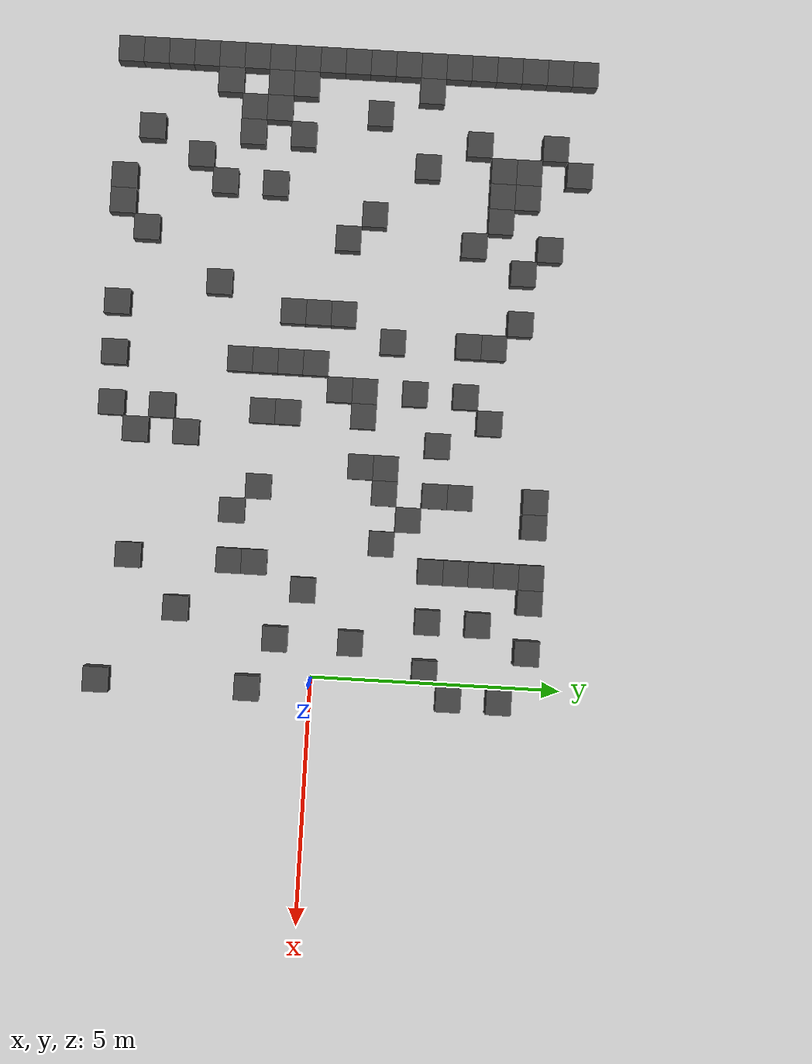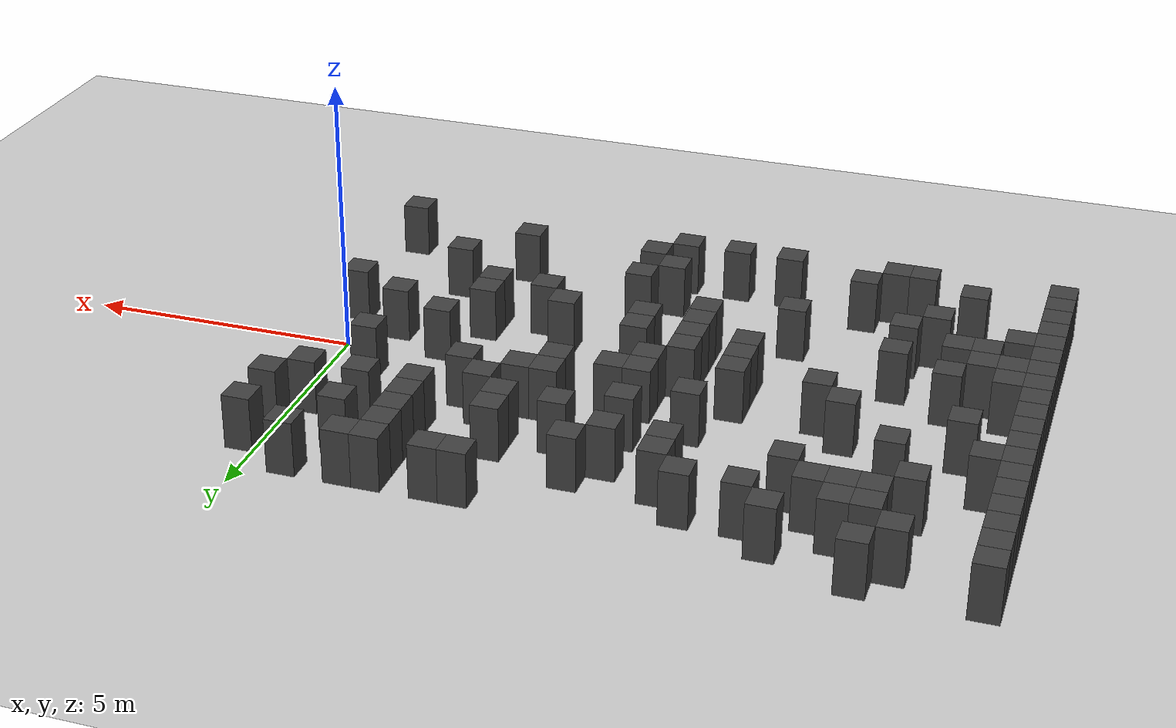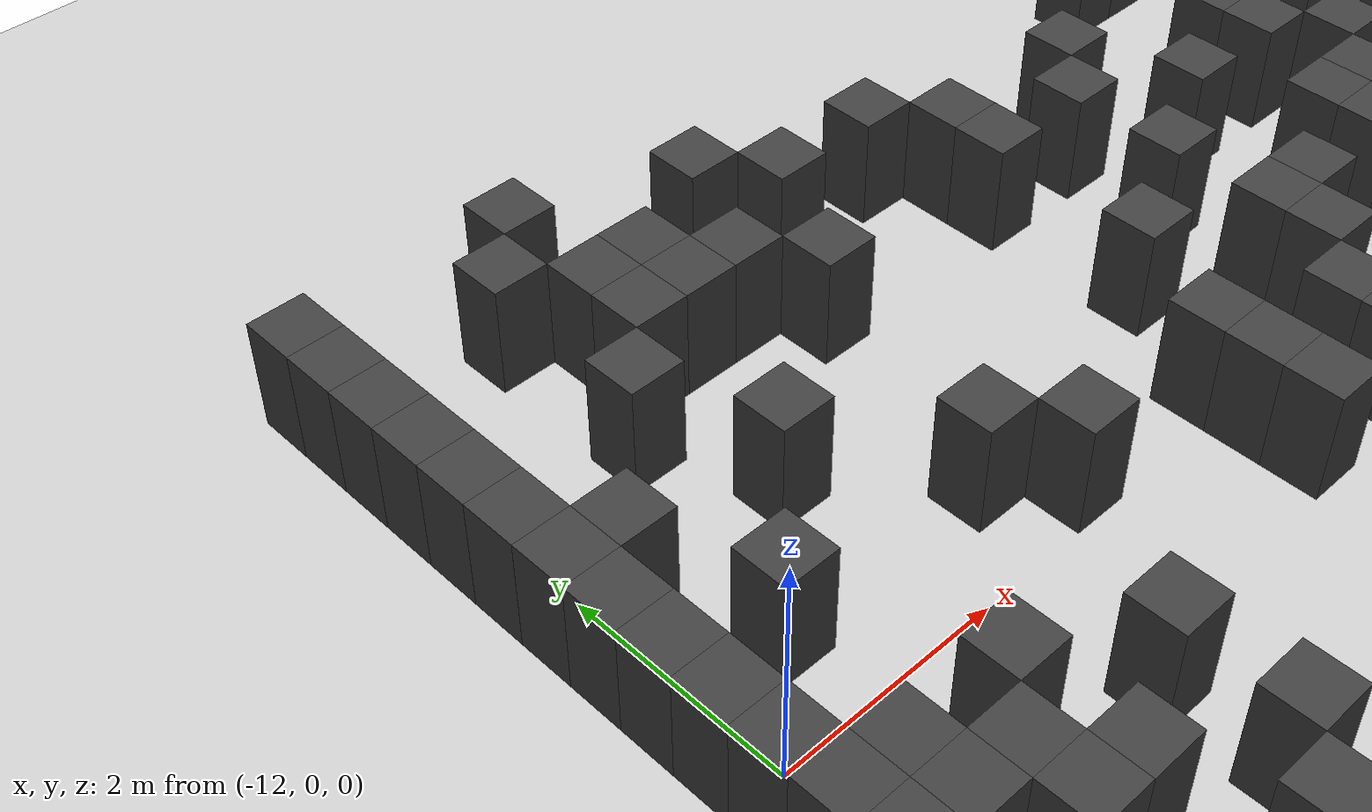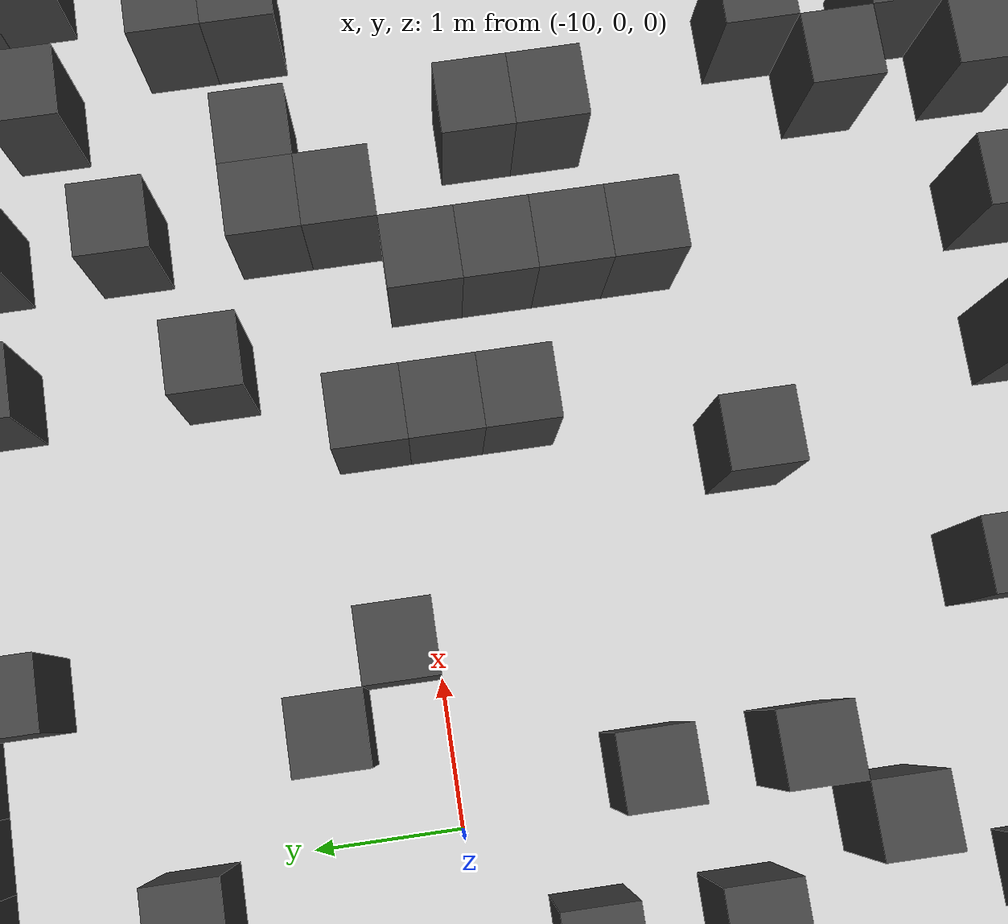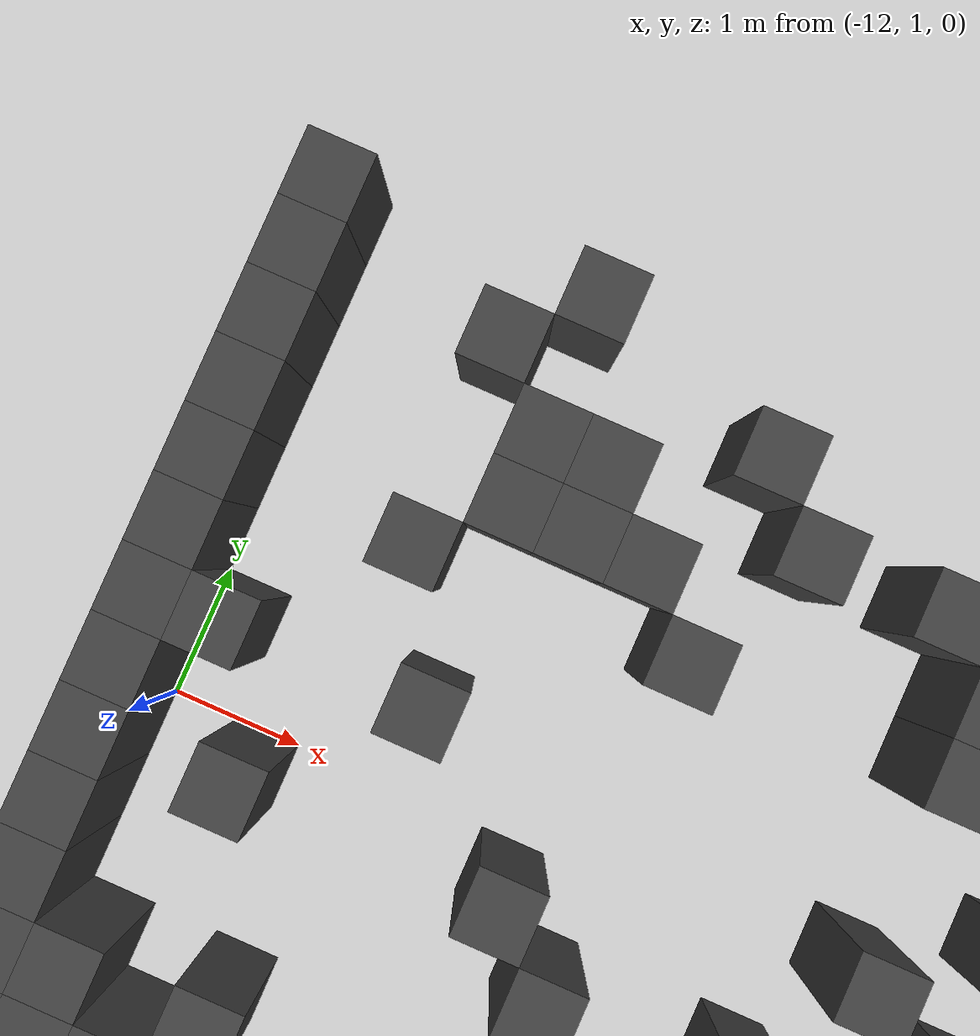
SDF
<sdf version="1.7">
 <world name="map_4009">
  <model name="ground_plane">
   <static>true</static>
   <link name="link">
    <collision name="collision">
     <geometry><plane><normal>0 0 1</normal><size>200 200</size></plane></geometry>
    </collision>
    <visual name="visual">
     <geometry><plane><normal>0 0 1</normal><size>200 200</size></plane></geometry>
     <material><ambient>0.8 0.8 0.8 1</ambient><diffuse>0.8 0.8 0.8 1</diffuse></material>
    </visual>
   </link>
  </model>
  <model name="maze_environment">
   <static>true</static>
   <link name="wall_210">
    <pose>-12.250 4.750 0.500 0 0 0</pose>
    <collision name="col"><geometry><box><size>0.5 0.5 1.0</size></box></geometry></collision>
    <visual name="vis">
     <geometry><box><size>0.5 0.5 1.0</size></box></geometry>
     <material><ambient>0.15 0.15 0.15 1</ambient><diffuse>0.25 0.25 0.25 1</diffuse></material>
    </visual>
   </link>
   <link name="wall_211">
    <pose>-10.250 4.750 0.500 0 0 0</pose>
    <collision name="col"><geometry><box><size>0.5 0.5 1.0</size></box></geometry></collision>
    <visual name="vis">
     <geometry><box><size>0.5 0.5 1.0</size></box></geometry>
     <material><ambient>0.15 0.15 0.15 1</ambient><diffuse>0.25 0.25 0.25 1</diffuse></material>
    </visual>
   </link>
   <link name="wall_222">
    <pose>-12.250 4.250 0.500 0 0 0</pose>
    <collision name="col"><geometry><box><size>0.5 0.5 1.0</size></box></geometry></collision>
    <visual name="vis">
     <geometry><box><size>0.5 0.5 1.0</size></box></geometry>
     <material><ambient>0.15 0.15 0.15 1</ambient><diffuse>0.25 0.25 0.25 1</diffuse></material>
    </visual>
   </link>
   <link name="wall_223">
    <pose>-10.750 4.250 0.500 0 0 0</pose>
    <collision name="col"><geometry><box><size>0.5 0.5 1.0</size></box></geometry></collision>
    <visual name="vis">
     <geometry><box><size>0.5 0.5 1.0</size></box></geometry>
     <material><ambient>0.15 0.15 0.15 1</ambient><diffuse>0.25 0.25 0.25 1</diffuse></material>
    </visual>
   </link>
   <link name="wall_224">
    <pose>-8.750 4.250 0.500 0 0 0</pose>
    <collision name="col"><geometry><box><size>0.5 0.5 1.0</size></box></geometry></collision>
    <visual name="vis">
     <geometry><box><size>0.5 0.5 1.0</size></box></geometry>
     <material><ambient>0.15 0.15 0.15 1</ambient><diffuse>0.25 0.25 0.25 1</diffuse></material>
    </visual>
   </link>
   <link name="wall_225">
    <pose>-3.750 4.250 0.500 0 0 0</pose>
    <collision name="col"><geometry><box><size>0.5 0.5 1.0</size></box></geometry></collision>
    <visual name="vis">
     <geometry><box><size>0.5 0.5 1.0</size></box></geometry>
     <material><ambient>0.15 0.15 0.15 1</ambient><diffuse>0.25 0.25 0.25 1</diffuse></material>
    </visual>
   </link>
   <link name="wall_226">
    <pose>-3.250 4.250 0.500 0 0 0</pose>
    <collision name="col"><geometry><box><size>0.5 0.5 1.0</size></box></geometry></collision>
    <visual name="vis">
     <geometry><box><size>0.5 0.5 1.0</size></box></geometry>
     <material><ambient>0.15 0.15 0.15 1</ambient><diffuse>0.25 0.25 0.25 1</diffuse></material>
    </visual>
   </link>
   <link name="wall_227">
    <pose>-2.250 4.250 0.500 0 0 0</pose>
    <collision name="col"><geometry><box><size>0.5 0.5 1.0</size></box></geometry></collision>
    <visual name="vis">
     <geometry><box><size>0.5 0.5 1.0</size></box></geometry>
     <material><ambient>0.15 0.15 0.15 1</ambient><diffuse>0.25 0.25 0.25 1</diffuse></material>
    </visual>
   </link>
   <link name="wall_228">
    <pose>-1.750 4.250 0.500 0 0 0</pose>
    <collision name="col"><geometry><box><size>0.5 0.5 1.0</size></box></geometry></collision>
    <visual name="vis">
     <geometry><box><size>0.5 0.5 1.0</size></box></geometry>
     <material><ambient>0.15 0.15 0.15 1</ambient><diffuse>0.25 0.25 0.25 1</diffuse></material>
    </visual>
   </link>
   <link name="wall_229">
    <pose>-0.750 4.250 0.500 0 0 0</pose>
    <collision name="col"><geometry><box><size>0.5 0.5 1.0</size></box></geometry></collision>
    <visual name="vis">
     <geometry><box><size>0.5 0.5 1.0</size></box></geometry>
     <material><ambient>0.15 0.15 0.15 1</ambient><diffuse>0.25 0.25 0.25 1</diffuse></material>
    </visual>
   </link>
   <link name="wall_236">
    <pose>-12.250 3.750 0.500 0 0 0</pose>
    <collision name="col"><geometry><box><size>0.5 0.5 1.0</size></box></geometry></collision>
    <visual name="vis">
     <geometry><box><size>0.5 0.5 1.0</size></box></geometry>
     <material><ambient>0.15 0.15 0.15 1</ambient><diffuse>0.25 0.25 0.25 1</diffuse></material>
    </visual>
   </link>
   <link name="wall_237">
    <pose>-10.250 3.750 0.500 0 0 0</pose>
    <collision name="col"><geometry><box><size>0.5 0.5 1.0</size></box></geometry></collision>
    <visual name="vis">
     <geometry><box><size>0.5 0.5 1.0</size></box></geometry>
     <material><ambient>0.15 0.15 0.15 1</ambient><diffuse>0.25 0.25 0.25 1</diffuse></material>
    </visual>
   </link>
   <link name="wall_238">
    <pose>-9.750 3.750 0.500 0 0 0</pose>
    <collision name="col"><geometry><box><size>0.5 0.5 1.0</size></box></geometry></collision>
    <visual name="vis">
     <geometry><box><size>0.5 0.5 1.0</size></box></geometry>
     <material><ambient>0.15 0.15 0.15 1</ambient><diffuse>0.25 0.25 0.25 1</diffuse></material>
    </visual>
   </link>
   <link name="wall_239">
    <pose>-8.250 3.750 0.500 0 0 0</pose>
    <collision name="col"><geometry><box><size>0.5 0.5 1.0</size></box></geometry></collision>
    <visual name="vis">
     <geometry><box><size>0.5 0.5 1.0</size></box></geometry>
     <material><ambient>0.15 0.15 0.15 1</ambient><diffuse>0.25 0.25 0.25 1</diffuse></material>
    </visual>
   </link>
   <link name="wall_240">
    <pose>-7.250 3.750 0.500 0 0 0</pose>
    <collision name="col"><geometry><box><size>0.5 0.5 1.0</size></box></geometry></collision>
    <visual name="vis">
     <geometry><box><size>0.5 0.5 1.0</size></box></geometry>
     <material><ambient>0.15 0.15 0.15 1</ambient><diffuse>0.25 0.25 0.25 1</diffuse></material>
    </visual>
   </link>
   <link name="wall_241">
    <pose>-2.250 3.750 0.500 0 0 0</pose>
    <collision name="col"><geometry><box><size>0.5 0.5 1.0</size></box></geometry></collision>
    <visual name="vis">
     <geometry><box><size>0.5 0.5 1.0</size></box></geometry>
     <material><ambient>0.15 0.15 0.15 1</ambient><diffuse>0.25 0.25 0.25 1</diffuse></material>
    </visual>
   </link>
   <link name="wall_242">
    <pose>0.250 3.750 0.500 0 0 0</pose>
    <collision name="col"><geometry><box><size>0.5 0.5 1.0</size></box></geometry></collision>
    <visual name="vis">
     <geometry><box><size>0.5 0.5 1.0</size></box></geometry>
     <material><ambient>0.15 0.15 0.15 1</ambient><diffuse>0.25 0.25 0.25 1</diffuse></material>
    </visual>
   </link>
   <link name="wall_245">
    <pose>-12.250 3.250 0.500 0 0 0</pose>
    <collision name="col"><geometry><box><size>0.5 0.5 1.0</size></box></geometry></collision>
    <visual name="vis">
     <geometry><box><size>0.5 0.5 1.0</size></box></geometry>
     <material><ambient>0.15 0.15 0.15 1</ambient><diffuse>0.25 0.25 0.25 1</diffuse></material>
    </visual>
   </link>
   <link name="wall_246">
    <pose>-10.250 3.250 0.500 0 0 0</pose>
    <collision name="col"><geometry><box><size>0.5 0.5 1.0</size></box></geometry></collision>
    <visual name="vis">
     <geometry><box><size>0.5 0.5 1.0</size></box></geometry>
     <material><ambient>0.15 0.15 0.15 1</ambient><diffuse>0.25 0.25 0.25 1</diffuse></material>
    </visual>
   </link>
   <link name="wall_247">
    <pose>-9.750 3.250 0.500 0 0 0</pose>
    <collision name="col"><geometry><box><size>0.5 0.5 1.0</size></box></geometry></collision>
    <visual name="vis">
     <geometry><box><size>0.5 0.5 1.0</size></box></geometry>
     <material><ambient>0.15 0.15 0.15 1</ambient><diffuse>0.25 0.25 0.25 1</diffuse></material>
    </visual>
   </link>
   <link name="wall_248">
    <pose>-9.250 3.250 0.500 0 0 0</pose>
    <collision name="col"><geometry><box><size>0.5 0.5 1.0</size></box></geometry></collision>
    <visual name="vis">
     <geometry><box><size>0.5 0.5 1.0</size></box></geometry>
     <material><ambient>0.15 0.15 0.15 1</ambient><diffuse>0.25 0.25 0.25 1</diffuse></material>
    </visual>
   </link>
   <link name="wall_249">
    <pose>-6.750 3.250 0.500 0 0 0</pose>
    <collision name="col"><geometry><box><size>0.5 0.5 1.0</size></box></geometry></collision>
    <visual name="vis">
     <geometry><box><size>0.5 0.5 1.0</size></box></geometry>
     <material><ambient>0.15 0.15 0.15 1</ambient><diffuse>0.25 0.25 0.25 1</diffuse></material>
    </visual>
   </link>
   <link name="wall_250">
    <pose>-5.250 3.250 0.500 0 0 0</pose>
    <collision name="col"><geometry><box><size>0.5 0.5 1.0</size></box></geometry></collision>
    <visual name="vis">
     <geometry><box><size>0.5 0.5 1.0</size></box></geometry>
     <material><ambient>0.15 0.15 0.15 1</ambient><diffuse>0.25 0.25 0.25 1</diffuse></material>
    </visual>
   </link>
   <link name="wall_251">
    <pose>-2.250 3.250 0.500 0 0 0</pose>
    <collision name="col"><geometry><box><size>0.5 0.5 1.0</size></box></geometry></collision>
    <visual name="vis">
     <geometry><box><size>0.5 0.5 1.0</size></box></geometry>
     <material><ambient>0.15 0.15 0.15 1</ambient><diffuse>0.25 0.25 0.25 1</diffuse></material>
    </visual>
   </link>
   <link name="wall_252">
    <pose>-1.250 3.250 0.500 0 0 0</pose>
    <collision name="col"><geometry><box><size>0.5 0.5 1.0</size></box></geometry></collision>
    <visual name="vis">
     <geometry><box><size>0.5 0.5 1.0</size></box></geometry>
     <material><ambient>0.15 0.15 0.15 1</ambient><diffuse>0.25 0.25 0.25 1</diffuse></material>
    </visual>
   </link>
   <link name="wall_258">
    <pose>-12.250 2.750 0.500 0 0 0</pose>
    <collision name="col"><geometry><box><size>0.5 0.5 1.0</size></box></geometry></collision>
    <visual name="vis">
     <geometry><box><size>0.5 0.5 1.0</size></box></geometry>
     <material><ambient>0.15 0.15 0.15 1</ambient><diffuse>0.25 0.25 0.25 1</diffuse></material>
    </visual>
   </link>
   <link name="wall_259">
    <pose>-10.750 2.750 0.500 0 0 0</pose>
    <collision name="col"><geometry><box><size>0.5 0.5 1.0</size></box></geometry></collision>
    <visual name="vis">
     <geometry><box><size>0.5 0.5 1.0</size></box></geometry>
     <material><ambient>0.15 0.15 0.15 1</ambient><diffuse>0.25 0.25 0.25 1</diffuse></material>
    </visual>
   </link>
   <link name="wall_260">
    <pose>-8.750 2.750 0.500 0 0 0</pose>
    <collision name="col"><geometry><box><size>0.5 0.5 1.0</size></box></geometry></collision>
    <visual name="vis">
     <geometry><box><size>0.5 0.5 1.0</size></box></geometry>
     <material><ambient>0.15 0.15 0.15 1</ambient><diffuse>0.25 0.25 0.25 1</diffuse></material>
    </visual>
   </link>
   <link name="wall_261">
    <pose>-6.750 2.750 0.500 0 0 0</pose>
    <collision name="col"><geometry><box><size>0.5 0.5 1.0</size></box></geometry></collision>
    <visual name="vis">
     <geometry><box><size>0.5 0.5 1.0</size></box></geometry>
     <material><ambient>0.15 0.15 0.15 1</ambient><diffuse>0.25 0.25 0.25 1</diffuse></material>
    </visual>
   </link>
   <link name="wall_262">
    <pose>-5.750 2.750 0.500 0 0 0</pose>
    <collision name="col"><geometry><box><size>0.5 0.5 1.0</size></box></geometry></collision>
    <visual name="vis">
     <geometry><box><size>0.5 0.5 1.0</size></box></geometry>
     <material><ambient>0.15 0.15 0.15 1</ambient><diffuse>0.25 0.25 0.25 1</diffuse></material>
    </visual>
   </link>
   <link name="wall_263">
    <pose>-3.750 2.750 0.500 0 0 0</pose>
    <collision name="col"><geometry><box><size>0.5 0.5 1.0</size></box></geometry></collision>
    <visual name="vis">
     <geometry><box><size>0.5 0.5 1.0</size></box></geometry>
     <material><ambient>0.15 0.15 0.15 1</ambient><diffuse>0.25 0.25 0.25 1</diffuse></material>
    </visual>
   </link>
   <link name="wall_264">
    <pose>-2.250 2.750 0.500 0 0 0</pose>
    <collision name="col"><geometry><box><size>0.5 0.5 1.0</size></box></geometry></collision>
    <visual name="vis">
     <geometry><box><size>0.5 0.5 1.0</size></box></geometry>
     <material><ambient>0.15 0.15 0.15 1</ambient><diffuse>0.25 0.25 0.25 1</diffuse></material>
    </visual>
   </link>
   <link name="wall_265">
    <pose>0.250 2.750 0.500 0 0 0</pose>
    <collision name="col"><geometry><box><size>0.5 0.5 1.0</size></box></geometry></collision>
    <visual name="vis">
     <geometry><box><size>0.5 0.5 1.0</size></box></geometry>
     <material><ambient>0.15 0.15 0.15 1</ambient><diffuse>0.25 0.25 0.25 1</diffuse></material>
    </visual>
   </link>
   <link name="wall_271">
    <pose>-12.250 2.250 0.500 0 0 0</pose>
    <collision name="col"><geometry><box><size>0.5 0.5 1.0</size></box></geometry></collision>
    <visual name="vis">
     <geometry><box><size>0.5 0.5 1.0</size></box></geometry>
     <material><ambient>0.15 0.15 0.15 1</ambient><diffuse>0.25 0.25 0.25 1</diffuse></material>
    </visual>
   </link>
   <link name="wall_272">
    <pose>-4.750 2.250 0.500 0 0 0</pose>
    <collision name="col"><geometry><box><size>0.5 0.5 1.0</size></box></geometry></collision>
    <visual name="vis">
     <geometry><box><size>0.5 0.5 1.0</size></box></geometry>
     <material><ambient>0.15 0.15 0.15 1</ambient><diffuse>0.25 0.25 0.25 1</diffuse></material>
    </visual>
   </link>
   <link name="wall_273">
    <pose>-3.750 2.250 0.500 0 0 0</pose>
    <collision name="col"><geometry><box><size>0.5 0.5 1.0</size></box></geometry></collision>
    <visual name="vis">
     <geometry><box><size>0.5 0.5 1.0</size></box></geometry>
     <material><ambient>0.15 0.15 0.15 1</ambient><diffuse>0.25 0.25 0.25 1</diffuse></material>
    </visual>
   </link>
   <link name="wall_274">
    <pose>-2.250 2.250 0.500 0 0 0</pose>
    <collision name="col"><geometry><box><size>0.5 0.5 1.0</size></box></geometry></collision>
    <visual name="vis">
     <geometry><box><size>0.5 0.5 1.0</size></box></geometry>
     <material><ambient>0.15 0.15 0.15 1</ambient><diffuse>0.25 0.25 0.25 1</diffuse></material>
    </visual>
   </link>
   <link name="wall_275">
    <pose>-1.250 2.250 0.500 0 0 0</pose>
    <collision name="col"><geometry><box><size>0.5 0.5 1.0</size></box></geometry></collision>
    <visual name="vis">
     <geometry><box><size>0.5 0.5 1.0</size></box></geometry>
     <material><ambient>0.15 0.15 0.15 1</ambient><diffuse>0.25 0.25 0.25 1</diffuse></material>
    </visual>
   </link>
   <link name="wall_276">
    <pose>-0.250 2.250 0.500 0 0 0</pose>
    <collision name="col"><geometry><box><size>0.5 0.5 1.0</size></box></geometry></collision>
    <visual name="vis">
     <geometry><box><size>0.5 0.5 1.0</size></box></geometry>
     <material><ambient>0.15 0.15 0.15 1</ambient><diffuse>0.25 0.25 0.25 1</diffuse></material>
    </visual>
   </link>
   <link name="wall_281">
    <pose>-12.250 1.750 0.500 0 0 0</pose>
    <collision name="col"><geometry><box><size>0.5 0.5 1.0</size></box></geometry></collision>
    <visual name="vis">
     <geometry><box><size>0.5 0.5 1.0</size></box></geometry>
     <material><ambient>0.15 0.15 0.15 1</ambient><diffuse>0.25 0.25 0.25 1</diffuse></material>
    </visual>
   </link>
   <link name="wall_282">
    <pose>-11.750 1.750 0.500 0 0 0</pose>
    <collision name="col"><geometry><box><size>0.5 0.5 1.0</size></box></geometry></collision>
    <visual name="vis">
     <geometry><box><size>0.5 0.5 1.0</size></box></geometry>
     <material><ambient>0.15 0.15 0.15 1</ambient><diffuse>0.25 0.25 0.25 1</diffuse></material>
    </visual>
   </link>
   <link name="wall_283">
    <pose>-10.250 1.750 0.500 0 0 0</pose>
    <collision name="col"><geometry><box><size>0.5 0.5 1.0</size></box></geometry></collision>
    <visual name="vis">
     <geometry><box><size>0.5 0.5 1.0</size></box></geometry>
     <material><ambient>0.15 0.15 0.15 1</ambient><diffuse>0.25 0.25 0.25 1</diffuse></material>
    </visual>
   </link>
   <link name="wall_284">
    <pose>-5.750 1.750 0.500 0 0 0</pose>
    <collision name="col"><geometry><box><size>0.5 0.5 1.0</size></box></geometry></collision>
    <visual name="vis">
     <geometry><box><size>0.5 0.5 1.0</size></box></geometry>
     <material><ambient>0.15 0.15 0.15 1</ambient><diffuse>0.25 0.25 0.25 1</diffuse></material>
    </visual>
   </link>
   <link name="wall_285">
    <pose>-3.250 1.750 0.500 0 0 0</pose>
    <collision name="col"><geometry><box><size>0.5 0.5 1.0</size></box></geometry></collision>
    <visual name="vis">
     <geometry><box><size>0.5 0.5 1.0</size></box></geometry>
     <material><ambient>0.15 0.15 0.15 1</ambient><diffuse>0.25 0.25 0.25 1</diffuse></material>
    </visual>
   </link>
   <link name="wall_290">
    <pose>-12.250 1.250 0.500 0 0 0</pose>
    <collision name="col"><geometry><box><size>0.5 0.5 1.0</size></box></geometry></collision>
    <visual name="vis">
     <geometry><box><size>0.5 0.5 1.0</size></box></geometry>
     <material><ambient>0.15 0.15 0.15 1</ambient><diffuse>0.25 0.25 0.25 1</diffuse></material>
    </visual>
   </link>
   <link name="wall_291">
    <pose>-6.750 1.250 0.500 0 0 0</pose>
    <collision name="col"><geometry><box><size>0.5 0.5 1.0</size></box></geometry></collision>
    <visual name="vis">
     <geometry><box><size>0.5 0.5 1.0</size></box></geometry>
     <material><ambient>0.15 0.15 0.15 1</ambient><diffuse>0.25 0.25 0.25 1</diffuse></material>
    </visual>
   </link>
   <link name="wall_292">
    <pose>-4.250 1.250 0.500 0 0 0</pose>
    <collision name="col"><geometry><box><size>0.5 0.5 1.0</size></box></geometry></collision>
    <visual name="vis">
     <geometry><box><size>0.5 0.5 1.0</size></box></geometry>
     <material><ambient>0.15 0.15 0.15 1</ambient><diffuse>0.25 0.25 0.25 1</diffuse></material>
    </visual>
   </link>
   <link name="wall_293">
    <pose>-3.750 1.250 0.500 0 0 0</pose>
    <collision name="col"><geometry><box><size>0.5 0.5 1.0</size></box></geometry></collision>
    <visual name="vis">
     <geometry><box><size>0.5 0.5 1.0</size></box></geometry>
     <material><ambient>0.15 0.15 0.15 1</ambient><diffuse>0.25 0.25 0.25 1</diffuse></material>
    </visual>
   </link>
   <link name="wall_294">
    <pose>-2.750 1.250 0.500 0 0 0</pose>
    <collision name="col"><geometry><box><size>0.5 0.5 1.0</size></box></geometry></collision>
    <visual name="vis">
     <geometry><box><size>0.5 0.5 1.0</size></box></geometry>
     <material><ambient>0.15 0.15 0.15 1</ambient><diffuse>0.25 0.25 0.25 1</diffuse></material>
    </visual>
   </link>
   <link name="wall_299">
    <pose>-12.250 0.750 0.500 0 0 0</pose>
    <collision name="col"><geometry><box><size>0.5 0.5 1.0</size></box></geometry></collision>
    <visual name="vis">
     <geometry><box><size>0.5 0.5 1.0</size></box></geometry>
     <material><ambient>0.15 0.15 0.15 1</ambient><diffuse>0.25 0.25 0.25 1</diffuse></material>
    </visual>
   </link>
   <link name="wall_300">
    <pose>-11.250 0.750 0.500 0 0 0</pose>
    <collision name="col"><geometry><box><size>0.5 0.5 1.0</size></box></geometry></collision>
    <visual name="vis">
     <geometry><box><size>0.5 0.5 1.0</size></box></geometry>
     <material><ambient>0.15 0.15 0.15 1</ambient><diffuse>0.25 0.25 0.25 1</diffuse></material>
    </visual>
   </link>
   <link name="wall_301">
    <pose>-9.250 0.750 0.500 0 0 0</pose>
    <collision name="col"><geometry><box><size>0.5 0.5 1.0</size></box></geometry></collision>
    <visual name="vis">
     <geometry><box><size>0.5 0.5 1.0</size></box></geometry>
     <material><ambient>0.15 0.15 0.15 1</ambient><diffuse>0.25 0.25 0.25 1</diffuse></material>
    </visual>
   </link>
   <link name="wall_302">
    <pose>-5.750 0.750 0.500 0 0 0</pose>
    <collision name="col"><geometry><box><size>0.5 0.5 1.0</size></box></geometry></collision>
    <visual name="vis">
     <geometry><box><size>0.5 0.5 1.0</size></box></geometry>
     <material><ambient>0.15 0.15 0.15 1</ambient><diffuse>0.25 0.25 0.25 1</diffuse></material>
    </visual>
   </link>
   <link name="wall_303">
    <pose>-5.250 0.750 0.500 0 0 0</pose>
    <collision name="col"><geometry><box><size>0.5 0.5 1.0</size></box></geometry></collision>
    <visual name="vis">
     <geometry><box><size>0.5 0.5 1.0</size></box></geometry>
     <material><ambient>0.15 0.15 0.15 1</ambient><diffuse>0.25 0.25 0.25 1</diffuse></material>
    </visual>
   </link>
   <link name="wall_304">
    <pose>-4.250 0.750 0.500 0 0 0</pose>
    <collision name="col"><geometry><box><size>0.5 0.5 1.0</size></box></geometry></collision>
    <visual name="vis">
     <geometry><box><size>0.5 0.5 1.0</size></box></geometry>
     <material><ambient>0.15 0.15 0.15 1</ambient><diffuse>0.25 0.25 0.25 1</diffuse></material>
    </visual>
   </link>
   <link name="wall_305">
    <pose>-0.750 0.750 0.500 0 0 0</pose>
    <collision name="col"><geometry><box><size>0.5 0.5 1.0</size></box></geometry></collision>
    <visual name="vis">
     <geometry><box><size>0.5 0.5 1.0</size></box></geometry>
     <material><ambient>0.15 0.15 0.15 1</ambient><diffuse>0.25 0.25 0.25 1</diffuse></material>
    </visual>
   </link>
   <link name="wall_314">
    <pose>-12.250 0.250 0.500 0 0 0</pose>
    <collision name="col"><geometry><box><size>0.5 0.5 1.0</size></box></geometry></collision>
    <visual name="vis">
     <geometry><box><size>0.5 0.5 1.0</size></box></geometry>
     <material><ambient>0.15 0.15 0.15 1</ambient><diffuse>0.25 0.25 0.25 1</diffuse></material>
    </visual>
   </link>
   <link name="wall_315">
    <pose>-8.750 0.250 0.500 0 0 0</pose>
    <collision name="col"><geometry><box><size>0.5 0.5 1.0</size></box></geometry></collision>
    <visual name="vis">
     <geometry><box><size>0.5 0.5 1.0</size></box></geometry>
     <material><ambient>0.15 0.15 0.15 1</ambient><diffuse>0.25 0.25 0.25 1</diffuse></material>
    </visual>
   </link>
   <link name="wall_316">
    <pose>-7.250 0.250 0.500 0 0 0</pose>
    <collision name="col"><geometry><box><size>0.5 0.5 1.0</size></box></geometry></collision>
    <visual name="vis">
     <geometry><box><size>0.5 0.5 1.0</size></box></geometry>
     <material><ambient>0.15 0.15 0.15 1</ambient><diffuse>0.25 0.25 0.25 1</diffuse></material>
    </visual>
   </link>
   <link name="wall_317">
    <pose>-5.750 0.250 0.500 0 0 0</pose>
    <collision name="col"><geometry><box><size>0.5 0.5 1.0</size></box></geometry></collision>
    <visual name="vis">
     <geometry><box><size>0.5 0.5 1.0</size></box></geometry>
     <material><ambient>0.15 0.15 0.15 1</ambient><diffuse>0.25 0.25 0.25 1</diffuse></material>
    </visual>
   </link>
   <link name="wall_322">
    <pose>-12.250 -0.250 0.500 0 0 0</pose>
    <collision name="col"><geometry><box><size>0.5 0.5 1.0</size></box></geometry></collision>
    <visual name="vis">
     <geometry><box><size>0.5 0.5 1.0</size></box></geometry>
     <material><ambient>0.15 0.15 0.15 1</ambient><diffuse>0.25 0.25 0.25 1</diffuse></material>
    </visual>
   </link>
   <link name="wall_323">
    <pose>-7.250 -0.250 0.500 0 0 0</pose>
    <collision name="col"><geometry><box><size>0.5 0.5 1.0</size></box></geometry></collision>
    <visual name="vis">
     <geometry><box><size>0.5 0.5 1.0</size></box></geometry>
     <material><ambient>0.15 0.15 0.15 1</ambient><diffuse>0.25 0.25 0.25 1</diffuse></material>
    </visual>
   </link>
   <link name="wall_324">
    <pose>-6.250 -0.250 0.500 0 0 0</pose>
    <collision name="col"><geometry><box><size>0.5 0.5 1.0</size></box></geometry></collision>
    <visual name="vis">
     <geometry><box><size>0.5 0.5 1.0</size></box></geometry>
     <material><ambient>0.15 0.15 0.15 1</ambient><diffuse>0.25 0.25 0.25 1</diffuse></material>
    </visual>
   </link>
   <link name="wall_325">
    <pose>-1.750 -0.250 0.500 0 0 0</pose>
    <collision name="col"><geometry><box><size>0.5 0.5 1.0</size></box></geometry></collision>
    <visual name="vis">
     <geometry><box><size>0.5 0.5 1.0</size></box></geometry>
     <material><ambient>0.15 0.15 0.15 1</ambient><diffuse>0.25 0.25 0.25 1</diffuse></material>
    </visual>
   </link>
   <link name="wall_331">
    <pose>-12.250 -0.750 0.500 0 0 0</pose>
    <collision name="col"><geometry><box><size>0.5 0.5 1.0</size></box></geometry></collision>
    <visual name="vis">
     <geometry><box><size>0.5 0.5 1.0</size></box></geometry>
     <material><ambient>0.15 0.15 0.15 1</ambient><diffuse>0.25 0.25 0.25 1</diffuse></material>
    </visual>
   </link>
   <link name="wall_332">
    <pose>-11.750 -0.750 0.500 0 0 0</pose>
    <collision name="col"><geometry><box><size>0.5 0.5 1.0</size></box></geometry></collision>
    <visual name="vis">
     <geometry><box><size>0.5 0.5 1.0</size></box></geometry>
     <material><ambient>0.15 0.15 0.15 1</ambient><diffuse>0.25 0.25 0.25 1</diffuse></material>
    </visual>
   </link>
   <link name="wall_333">
    <pose>-10.750 -0.750 0.500 0 0 0</pose>
    <collision name="col"><geometry><box><size>0.5 0.5 1.0</size></box></geometry></collision>
    <visual name="vis">
     <geometry><box><size>0.5 0.5 1.0</size></box></geometry>
     <material><ambient>0.15 0.15 0.15 1</ambient><diffuse>0.25 0.25 0.25 1</diffuse></material>
    </visual>
   </link>
   <link name="wall_334">
    <pose>-7.250 -0.750 0.500 0 0 0</pose>
    <collision name="col"><geometry><box><size>0.5 0.5 1.0</size></box></geometry></collision>
    <visual name="vis">
     <geometry><box><size>0.5 0.5 1.0</size></box></geometry>
     <material><ambient>0.15 0.15 0.15 1</ambient><diffuse>0.25 0.25 0.25 1</diffuse></material>
    </visual>
   </link>
   <link name="wall_335">
    <pose>-6.250 -0.750 0.500 0 0 0</pose>
    <collision name="col"><geometry><box><size>0.5 0.5 1.0</size></box></geometry></collision>
    <visual name="vis">
     <geometry><box><size>0.5 0.5 1.0</size></box></geometry>
     <material><ambient>0.15 0.15 0.15 1</ambient><diffuse>0.25 0.25 0.25 1</diffuse></material>
    </visual>
   </link>
   <link name="wall_336">
    <pose>-5.250 -0.750 0.500 0 0 0</pose>
    <collision name="col"><geometry><box><size>0.5 0.5 1.0</size></box></geometry></collision>
    <visual name="vis">
     <geometry><box><size>0.5 0.5 1.0</size></box></geometry>
     <material><ambient>0.15 0.15 0.15 1</ambient><diffuse>0.25 0.25 0.25 1</diffuse></material>
    </visual>
   </link>
   <link name="wall_337">
    <pose>-0.750 -0.750 0.500 0 0 0</pose>
    <collision name="col"><geometry><box><size>0.5 0.5 1.0</size></box></geometry></collision>
    <visual name="vis">
     <geometry><box><size>0.5 0.5 1.0</size></box></geometry>
     <material><ambient>0.15 0.15 0.15 1</ambient><diffuse>0.25 0.25 0.25 1</diffuse></material>
    </visual>
   </link>
   <link name="wall_343">
    <pose>-12.250 -1.250 0.500 0 0 0</pose>
    <collision name="col"><geometry><box><size>0.5 0.5 1.0</size></box></geometry></collision>
    <visual name="vis">
     <geometry><box><size>0.5 0.5 1.0</size></box></geometry>
     <material><ambient>0.15 0.15 0.15 1</ambient><diffuse>0.25 0.25 0.25 1</diffuse></material>
    </visual>
   </link>
   <link name="wall_344">
    <pose>-11.750 -1.250 0.500 0 0 0</pose>
    <collision name="col"><geometry><box><size>0.5 0.5 1.0</size></box></geometry></collision>
    <visual name="vis">
     <geometry><box><size>0.5 0.5 1.0</size></box></geometry>
     <material><ambient>0.15 0.15 0.15 1</ambient><diffuse>0.25 0.25 0.25 1</diffuse></material>
    </visual>
   </link>
   <link name="wall_345">
    <pose>-11.250 -1.250 0.500 0 0 0</pose>
    <collision name="col"><geometry><box><size>0.5 0.5 1.0</size></box></geometry></collision>
    <visual name="vis">
     <geometry><box><size>0.5 0.5 1.0</size></box></geometry>
     <material><ambient>0.15 0.15 0.15 1</ambient><diffuse>0.25 0.25 0.25 1</diffuse></material>
    </visual>
   </link>
   <link name="wall_346">
    <pose>-9.750 -1.250 0.500 0 0 0</pose>
    <collision name="col"><geometry><box><size>0.5 0.5 1.0</size></box></geometry></collision>
    <visual name="vis">
     <geometry><box><size>0.5 0.5 1.0</size></box></geometry>
     <material><ambient>0.15 0.15 0.15 1</ambient><diffuse>0.25 0.25 0.25 1</diffuse></material>
    </visual>
   </link>
   <link name="wall_347">
    <pose>-6.250 -1.250 0.500 0 0 0</pose>
    <collision name="col"><geometry><box><size>0.5 0.5 1.0</size></box></geometry></collision>
    <visual name="vis">
     <geometry><box><size>0.5 0.5 1.0</size></box></geometry>
     <material><ambient>0.15 0.15 0.15 1</ambient><diffuse>0.25 0.25 0.25 1</diffuse></material>
    </visual>
   </link>
   <link name="wall_348">
    <pose>-5.250 -1.250 0.500 0 0 0</pose>
    <collision name="col"><geometry><box><size>0.5 0.5 1.0</size></box></geometry></collision>
    <visual name="vis">
     <geometry><box><size>0.5 0.5 1.0</size></box></geometry>
     <material><ambient>0.15 0.15 0.15 1</ambient><diffuse>0.25 0.25 0.25 1</diffuse></material>
    </visual>
   </link>
   <link name="wall_349">
    <pose>-3.750 -1.250 0.500 0 0 0</pose>
    <collision name="col"><geometry><box><size>0.5 0.5 1.0</size></box></geometry></collision>
    <visual name="vis">
     <geometry><box><size>0.5 0.5 1.0</size></box></geometry>
     <material><ambient>0.15 0.15 0.15 1</ambient><diffuse>0.25 0.25 0.25 1</diffuse></material>
    </visual>
   </link>
   <link name="wall_350">
    <pose>-2.250 -1.250 0.500 0 0 0</pose>
    <collision name="col"><geometry><box><size>0.5 0.5 1.0</size></box></geometry></collision>
    <visual name="vis">
     <geometry><box><size>0.5 0.5 1.0</size></box></geometry>
     <material><ambient>0.15 0.15 0.15 1</ambient><diffuse>0.25 0.25 0.25 1</diffuse></material>
    </visual>
   </link>
   <link name="wall_351">
    <pose>0.250 -1.250 0.500 0 0 0</pose>
    <collision name="col"><geometry><box><size>0.5 0.5 1.0</size></box></geometry></collision>
    <visual name="vis">
     <geometry><box><size>0.5 0.5 1.0</size></box></geometry>
     <material><ambient>0.15 0.15 0.15 1</ambient><diffuse>0.25 0.25 0.25 1</diffuse></material>
    </visual>
   </link>
   <link name="wall_356">
    <pose>-12.250 -1.750 0.500 0 0 0</pose>
    <collision name="col"><geometry><box><size>0.5 0.5 1.0</size></box></geometry></collision>
    <visual name="vis">
     <geometry><box><size>0.5 0.5 1.0</size></box></geometry>
     <material><ambient>0.15 0.15 0.15 1</ambient><diffuse>0.25 0.25 0.25 1</diffuse></material>
    </visual>
   </link>
   <link name="wall_357">
    <pose>-11.250 -1.750 0.500 0 0 0</pose>
    <collision name="col"><geometry><box><size>0.5 0.5 1.0</size></box></geometry></collision>
    <visual name="vis">
     <geometry><box><size>0.5 0.5 1.0</size></box></geometry>
     <material><ambient>0.15 0.15 0.15 1</ambient><diffuse>0.25 0.25 0.25 1</diffuse></material>
    </visual>
   </link>
   <link name="wall_358">
    <pose>-10.750 -1.750 0.500 0 0 0</pose>
    <collision name="col"><geometry><box><size>0.5 0.5 1.0</size></box></geometry></collision>
    <visual name="vis">
     <geometry><box><size>0.5 0.5 1.0</size></box></geometry>
     <material><ambient>0.15 0.15 0.15 1</ambient><diffuse>0.25 0.25 0.25 1</diffuse></material>
    </visual>
   </link>
   <link name="wall_359">
    <pose>-6.250 -1.750 0.500 0 0 0</pose>
    <collision name="col"><geometry><box><size>0.5 0.5 1.0</size></box></geometry></collision>
    <visual name="vis">
     <geometry><box><size>0.5 0.5 1.0</size></box></geometry>
     <material><ambient>0.15 0.15 0.15 1</ambient><diffuse>0.25 0.25 0.25 1</diffuse></material>
    </visual>
   </link>
   <link name="wall_360">
    <pose>-3.250 -1.750 0.500 0 0 0</pose>
    <collision name="col"><geometry><box><size>0.5 0.5 1.0</size></box></geometry></collision>
    <visual name="vis">
     <geometry><box><size>0.5 0.5 1.0</size></box></geometry>
     <material><ambient>0.15 0.15 0.15 1</ambient><diffuse>0.25 0.25 0.25 1</diffuse></material>
    </visual>
   </link>
   <link name="wall_361">
    <pose>-2.250 -1.750 0.500 0 0 0</pose>
    <collision name="col"><geometry><box><size>0.5 0.5 1.0</size></box></geometry></collision>
    <visual name="vis">
     <geometry><box><size>0.5 0.5 1.0</size></box></geometry>
     <material><ambient>0.15 0.15 0.15 1</ambient><diffuse>0.25 0.25 0.25 1</diffuse></material>
    </visual>
   </link>
   <link name="wall_367">
    <pose>-12.250 -2.250 0.500 0 0 0</pose>
    <collision name="col"><geometry><box><size>0.5 0.5 1.0</size></box></geometry></collision>
    <visual name="vis">
     <geometry><box><size>0.5 0.5 1.0</size></box></geometry>
     <material><ambient>0.15 0.15 0.15 1</ambient><diffuse>0.25 0.25 0.25 1</diffuse></material>
    </visual>
   </link>
   <link name="wall_368">
    <pose>-11.750 -2.250 0.500 0 0 0</pose>
    <collision name="col"><geometry><box><size>0.5 0.5 1.0</size></box></geometry></collision>
    <visual name="vis">
     <geometry><box><size>0.5 0.5 1.0</size></box></geometry>
     <material><ambient>0.15 0.15 0.15 1</ambient><diffuse>0.25 0.25 0.25 1</diffuse></material>
    </visual>
   </link>
   <link name="wall_369">
    <pose>-9.750 -2.250 0.500 0 0 0</pose>
    <collision name="col"><geometry><box><size>0.5 0.5 1.0</size></box></geometry></collision>
    <visual name="vis">
     <geometry><box><size>0.5 0.5 1.0</size></box></geometry>
     <material><ambient>0.15 0.15 0.15 1</ambient><diffuse>0.25 0.25 0.25 1</diffuse></material>
    </visual>
   </link>
   <link name="wall_370">
    <pose>-7.750 -2.250 0.500 0 0 0</pose>
    <collision name="col"><geometry><box><size>0.5 0.5 1.0</size></box></geometry></collision>
    <visual name="vis">
     <geometry><box><size>0.5 0.5 1.0</size></box></geometry>
     <material><ambient>0.15 0.15 0.15 1</ambient><diffuse>0.25 0.25 0.25 1</diffuse></material>
    </visual>
   </link>
   <link name="wall_377">
    <pose>-12.250 -2.750 0.500 0 0 0</pose>
    <collision name="col"><geometry><box><size>0.5 0.5 1.0</size></box></geometry></collision>
    <visual name="vis">
     <geometry><box><size>0.5 0.5 1.0</size></box></geometry>
     <material><ambient>0.15 0.15 0.15 1</ambient><diffuse>0.25 0.25 0.25 1</diffuse></material>
    </visual>
   </link>
   <link name="wall_378">
    <pose>-10.250 -2.750 0.500 0 0 0</pose>
    <collision name="col"><geometry><box><size>0.5 0.5 1.0</size></box></geometry></collision>
    <visual name="vis">
     <geometry><box><size>0.5 0.5 1.0</size></box></geometry>
     <material><ambient>0.15 0.15 0.15 1</ambient><diffuse>0.25 0.25 0.25 1</diffuse></material>
    </visual>
   </link>
   <link name="wall_379">
    <pose>-4.750 -2.750 0.500 0 0 0</pose>
    <collision name="col"><geometry><box><size>0.5 0.5 1.0</size></box></geometry></collision>
    <visual name="vis">
     <geometry><box><size>0.5 0.5 1.0</size></box></geometry>
     <material><ambient>0.15 0.15 0.15 1</ambient><diffuse>0.25 0.25 0.25 1</diffuse></material>
    </visual>
   </link>
   <link name="wall_380">
    <pose>-1.250 -2.750 0.500 0 0 0</pose>
    <collision name="col"><geometry><box><size>0.5 0.5 1.0</size></box></geometry></collision>
    <visual name="vis">
     <geometry><box><size>0.5 0.5 1.0</size></box></geometry>
     <material><ambient>0.15 0.15 0.15 1</ambient><diffuse>0.25 0.25 0.25 1</diffuse></material>
    </visual>
   </link>
   <link name="wall_386">
    <pose>-12.250 -3.250 0.500 0 0 0</pose>
    <collision name="col"><geometry><box><size>0.5 0.5 1.0</size></box></geometry></collision>
    <visual name="vis">
     <geometry><box><size>0.5 0.5 1.0</size></box></geometry>
     <material><ambient>0.15 0.15 0.15 1</ambient><diffuse>0.25 0.25 0.25 1</diffuse></material>
    </visual>
   </link>
   <link name="wall_387">
    <pose>-5.250 -3.250 0.500 0 0 0</pose>
    <collision name="col"><geometry><box><size>0.5 0.5 1.0</size></box></geometry></collision>
    <visual name="vis">
     <geometry><box><size>0.5 0.5 1.0</size></box></geometry>
     <material><ambient>0.15 0.15 0.15 1</ambient><diffuse>0.25 0.25 0.25 1</diffuse></material>
    </visual>
   </link>
   <link name="wall_395">
    <pose>-12.250 -3.750 0.500 0 0 0</pose>
    <collision name="col"><geometry><box><size>0.5 0.5 1.0</size></box></geometry></collision>
    <visual name="vis">
     <geometry><box><size>0.5 0.5 1.0</size></box></geometry>
     <material><ambient>0.15 0.15 0.15 1</ambient><diffuse>0.25 0.25 0.25 1</diffuse></material>
    </visual>
   </link>
   <link name="wall_396">
    <pose>-10.750 -3.750 0.500 0 0 0</pose>
    <collision name="col"><geometry><box><size>0.5 0.5 1.0</size></box></geometry></collision>
    <visual name="vis">
     <geometry><box><size>0.5 0.5 1.0</size></box></geometry>
     <material><ambient>0.15 0.15 0.15 1</ambient><diffuse>0.25 0.25 0.25 1</diffuse></material>
    </visual>
   </link>
   <link name="wall_397">
    <pose>-8.750 -3.750 0.500 0 0 0</pose>
    <collision name="col"><geometry><box><size>0.5 0.5 1.0</size></box></geometry></collision>
    <visual name="vis">
     <geometry><box><size>0.5 0.5 1.0</size></box></geometry>
     <material><ambient>0.15 0.15 0.15 1</ambient><diffuse>0.25 0.25 0.25 1</diffuse></material>
    </visual>
   </link>
   <link name="wall_398">
    <pose>-4.750 -3.750 0.500 0 0 0</pose>
    <collision name="col"><geometry><box><size>0.5 0.5 1.0</size></box></geometry></collision>
    <visual name="vis">
     <geometry><box><size>0.5 0.5 1.0</size></box></geometry>
     <material><ambient>0.15 0.15 0.15 1</ambient><diffuse>0.25 0.25 0.25 1</diffuse></material>
    </visual>
   </link>
   <link name="wall_399">
    <pose>-2.250 -3.750 0.500 0 0 0</pose>
    <collision name="col"><geometry><box><size>0.5 0.5 1.0</size></box></geometry></collision>
    <visual name="vis">
     <geometry><box><size>0.5 0.5 1.0</size></box></geometry>
     <material><ambient>0.15 0.15 0.15 1</ambient><diffuse>0.25 0.25 0.25 1</diffuse></material>
    </visual>
   </link>
   <link name="wall_406">
    <pose>-12.250 -4.250 0.500 0 0 0</pose>
    <collision name="col"><geometry><box><size>0.5 0.5 1.0</size></box></geometry></collision>
    <visual name="vis">
     <geometry><box><size>0.5 0.5 1.0</size></box></geometry>
     <material><ambient>0.15 0.15 0.15 1</ambient><diffuse>0.25 0.25 0.25 1</diffuse></material>
    </visual>
   </link>
   <link name="wall_407">
    <pose>-9.750 -4.250 0.500 0 0 0</pose>
    <collision name="col"><geometry><box><size>0.5 0.5 1.0</size></box></geometry></collision>
    <visual name="vis">
     <geometry><box><size>0.5 0.5 1.0</size></box></geometry>
     <material><ambient>0.15 0.15 0.15 1</ambient><diffuse>0.25 0.25 0.25 1</diffuse></material>
    </visual>
   </link>
   <link name="wall_408">
    <pose>-9.250 -4.250 0.500 0 0 0</pose>
    <collision name="col"><geometry><box><size>0.5 0.5 1.0</size></box></geometry></collision>
    <visual name="vis">
     <geometry><box><size>0.5 0.5 1.0</size></box></geometry>
     <material><ambient>0.15 0.15 0.15 1</ambient><diffuse>0.25 0.25 0.25 1</diffuse></material>
    </visual>
   </link>
   <link name="wall_409">
    <pose>-7.250 -4.250 0.500 0 0 0</pose>
    <collision name="col"><geometry><box><size>0.5 0.5 1.0</size></box></geometry></collision>
    <visual name="vis">
     <geometry><box><size>0.5 0.5 1.0</size></box></geometry>
     <material><ambient>0.15 0.15 0.15 1</ambient><diffuse>0.25 0.25 0.25 1</diffuse></material>
    </visual>
   </link>
   <link name="wall_410">
    <pose>-6.250 -4.250 0.500 0 0 0</pose>
    <collision name="col"><geometry><box><size>0.5 0.5 1.0</size></box></geometry></collision>
    <visual name="vis">
     <geometry><box><size>0.5 0.5 1.0</size></box></geometry>
     <material><ambient>0.15 0.15 0.15 1</ambient><diffuse>0.25 0.25 0.25 1</diffuse></material>
    </visual>
   </link>
   <link name="wall_411">
    <pose>-5.250 -4.250 0.500 0 0 0</pose>
    <collision name="col"><geometry><box><size>0.5 0.5 1.0</size></box></geometry></collision>
    <visual name="vis">
     <geometry><box><size>0.5 0.5 1.0</size></box></geometry>
     <material><ambient>0.15 0.15 0.15 1</ambient><diffuse>0.25 0.25 0.25 1</diffuse></material>
    </visual>
   </link>
   <link name="wall_412">
    <pose>0.250 -4.250 0.500 0 0 0</pose>
    <collision name="col"><geometry><box><size>0.5 0.5 1.0</size></box></geometry></collision>
    <visual name="vis">
     <geometry><box><size>0.5 0.5 1.0</size></box></geometry>
     <material><ambient>0.15 0.15 0.15 1</ambient><diffuse>0.25 0.25 0.25 1</diffuse></material>
    </visual>
   </link>
  </model>
 </world>
</sdf>
